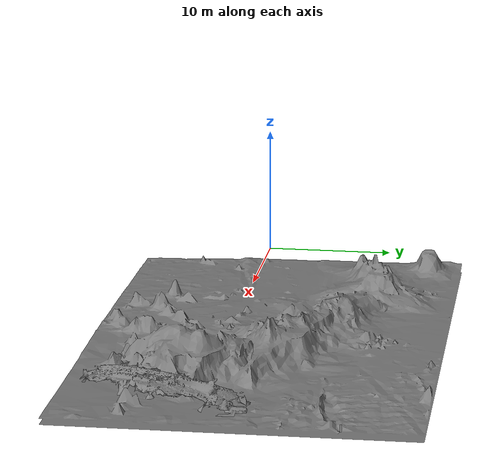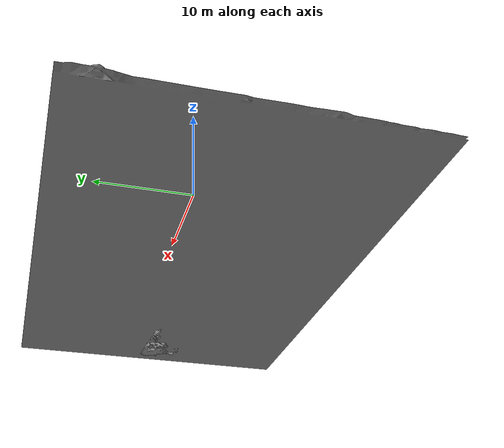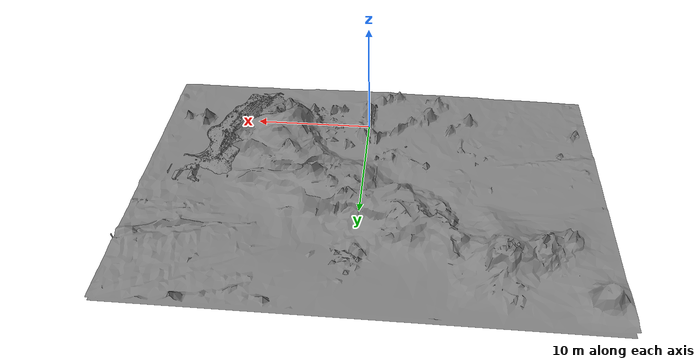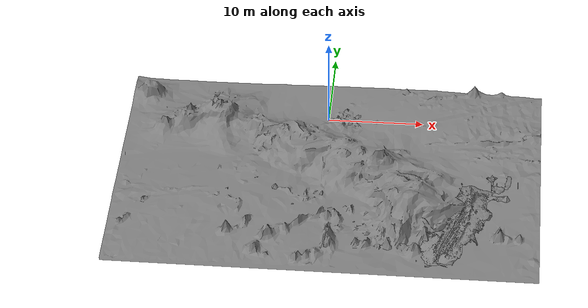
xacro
<?xml version="1.0"?>
<robot xmlns:xacro="http://www.ros.org/wiki/xacro" name="alpha_5_robot_state_publisher_world">

  <xacro:arg name="description_package" default="ros2_control_blue_reach_5"/>
  <xacro:arg name="world_frame" default="world"/>

  <xacro:property name="description_package" value="$(arg description_package)"/>
  <xacro:property name="world_frame" value="$(arg world_frame)"/>

  <xacro:include filename="$(find ${description_package})/xacro/world.xacro"/>

  <!-- Environment/static world tree. Robot global base transforms are published by the vehicle interfaces. -->
  <xacro:sim_world world_frame="${world_frame}"/>

</robot>

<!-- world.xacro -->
<robot xmlns:xacro="http://ros.org/wiki/xacro">

  <xacro:macro name="sim_world" params="world_frame:=world">

      <!-- world origin -->
    <link name="${world_frame}">
        <visual>
        <origin rpy="0 0 0" xyz="0 0 0"/>
        <geometry>
            <cylinder radius="0.06" length="0.09"/>
        </geometry>
        </visual>
    </link>

    <link name="world_bottom"/>

    <link name="bathymetry_shipwreck">
      <visual>
        <origin xyz="0 0 0" rpy="${pi/2} 0 0"/>
        <geometry>
          <mesh filename="file://$(find ros2_control_blue_reach_5)/Bathymetry/meshes/manhomansett.stl" scale="5 5 5"/>
        </geometry>
        <material name="gray">
          <color rgba="0.5 0.5 0.5 1.0"/>
        </material>
      </visual>
      <collision>
        <origin xyz="0 0 0" rpy="${pi/2} 0 0"/>
        <geometry>
          <mesh filename="file://$(find ros2_control_blue_reach_5)/Bathymetry/meshes/manhomansett.stl" scale="5 5 5"/>
        </geometry>
      </collision>
    </link>

    <link name="bathymetry_seafloor">
      <visual>
        <origin xyz="0 0 0" rpy="0 0 0"/>
        <geometry>
          <mesh filename="file://$(find ros2_control_blue_reach_5)/Bathymetry/meshes/hawaii_cropped.stl" scale="0.4 0.4 0.4"/>
        </geometry>
        <material name="gray">
          <color rgba="0.5 0.5 0.5 1.0"/>
        </material>
      </visual>
      <collision>
        <origin xyz="0 0 0" rpy="0 0 0"/>
        <geometry>
          <mesh filename="file://$(find ros2_control_blue_reach_5)/Bathymetry/meshes/hawaii_cropped.stl" scale="0.4 0.4 0.4"/>
        </geometry>
      </collision>
    </link>

    <joint name="world_bottom_joint" type="fixed">
      <child link="world_bottom" />
      <parent link="${world_frame}" />
      <origin xyz="0.0 0.0 -8.0" rpy="0 0 0"/>
    </joint>

    <joint name="bathymetry_seafloor_joint" type="fixed">
      <child link="bathymetry_seafloor"/>
      <parent link="world_bottom" />
      <origin xyz="0.0 0.0 0.0" rpy="0 0 0"/>
    </joint>

   <joint name="bathymetry_shipwreck_joint" type="fixed">
      <child link="bathymetry_shipwreck" />
      <parent link="world_bottom" />
      <origin xyz="15.0 -6.0 -1.0" rpy="0 0 0"/>
    </joint>

    <!-- Robot world origin -->
    <link name="base_link"/>

    <joint name="world_joint" type="fixed">
      <child link="base_link" />
      <parent link="${world_frame}" />
      <origin xyz="0.0 0.0 0.0" rpy="0 0 0"/>
    </joint>

  </xacro:macro>

</robot>
